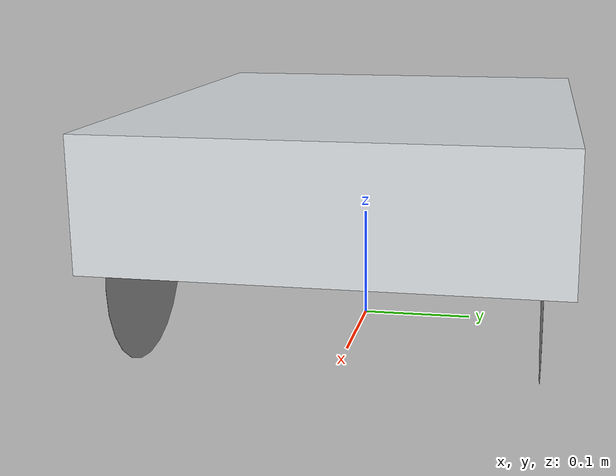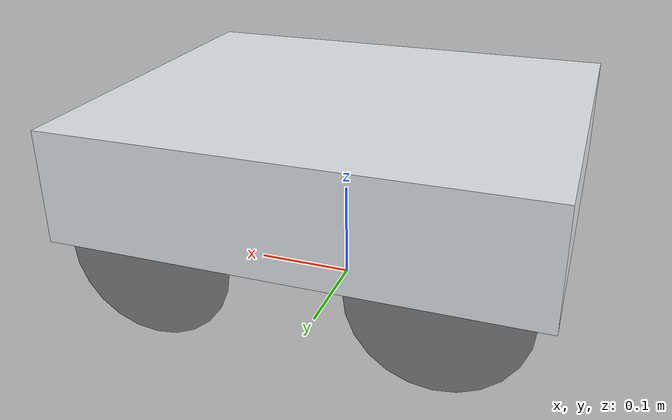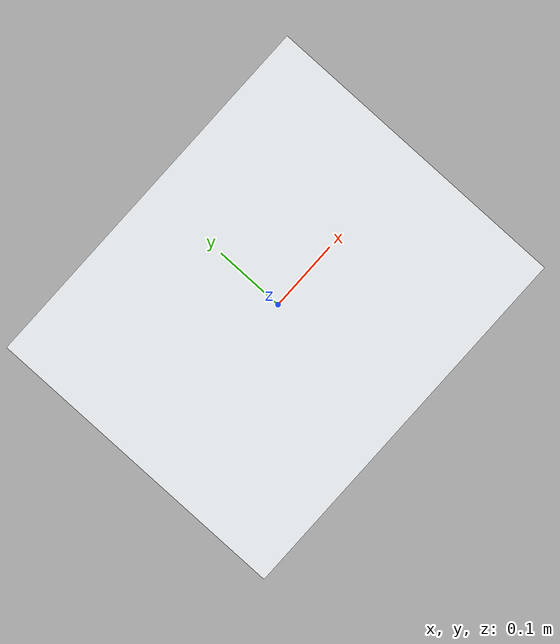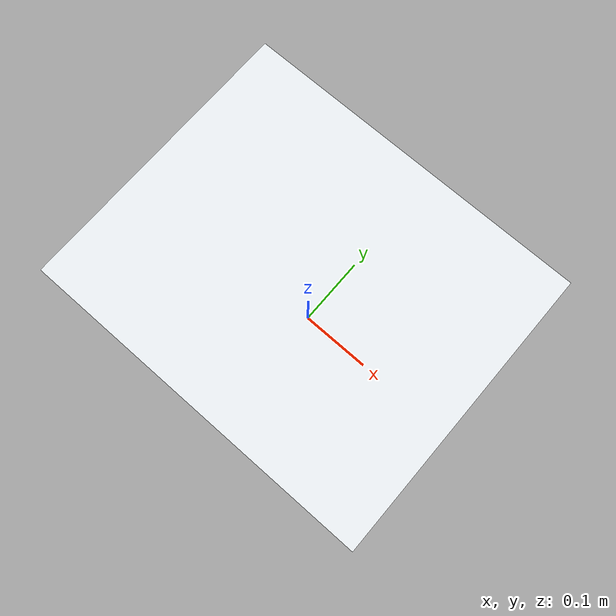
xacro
<?xml version="1.0"?>
<robot xmlns:xacro="http://www.ros.org/wiki/xacro" name="mobile_base_moveit">

    <!-- Include the simplified mobile base model -->
    <xacro:include filename="$(find rh_moveit)/config/mobile_base/hexmove_simplfied_model.xacro"/>

    <!-- Include ros2_control configuration -->
    <xacro:include filename="$(find rh_moveit)/config/mobile_base/mobile_base.ros2_control.xacro"/>

    <!-- Instantiate the ros2_control configuration -->
    <xacro:mobile_base_ros2_control name="MobileBaseHardware"/>

</robot>

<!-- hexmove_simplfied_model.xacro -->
<robot name="sim" xmlns:xacro="http://www.ros.org/wiki/xacro">

    <!-- base link -->
    <link name="mobile_base">
        <inertial>
            <origin xyz="-3.9274E-14 -2.7443E-13 0.16087" rpy="0 0 0" />
            <mass value="10.31238" />
            <inertia ixx="0.0035443"  ixy="-3.9883E-18" ixz="-7.3407E-22"
                     iyy="1.5651E-05" iyz="2.4064E-18"  izz="0.0035443" />
        </inertial>
        <visual>
            <origin xyz="-0.005 0.0 0.15" rpy="0 0 0" />
            <geometry>
                <box size="0.46 0.38 0.11" />
            </geometry>
            <material name="">
                <color rgba="0.89804 0.91765 0.92941 1" />
            </material>
        </visual>
        <collision>
            <origin xyz="-0.005 0.0 0.15" rpy="0 0 0" />
            <geometry>
                <box size="0.59 0.617 0.20" />
            </geometry>
        </collision>
    </link>
    <gazebo reference="mobile_base">
        <material>Gazebo/White</material>
        <gravity>true</gravity>
    </gazebo>

    <!-- left back wheel -->
    <link name="LeftBackWheel_Link">
    <inertial>
        <origin xyz="6.2681E-07 -0.0024922 4.309E-06" rpy="0 0 0" />
        <mass value="2.2978" />
        <inertia ixx="0.0056318" ixy="9.6362E-08" ixz="7.6946E-06"
                 iyy="0.0092712" iyz="2.4773E-07" izz="0.0056483" />
        </inertial>
        <visual>
            <origin xyz="0 0 0" rpy="1.57079637 0 0" />
            <geometry>
                <cylinder length="0.0001" radius="0.08285"/>
            </geometry>
            <material name="">
                <color rgba="0.5 0.5 0.5 1" />
            </material>
        </visual>
        <collision>
            <origin xyz="0 0 0" rpy="1.57079637 0 0" />
            <geometry>
                <cylinder length="0.0001" radius="0.08285"/>
            </geometry>
        </collision>
    </link>
    <gazebo reference="LeftBackWheel_Link">
        <material>Gazebo/DarkGrey</material>
        <mu1>0.01</mu1>
        <mu2>0.01</mu2>
        <gravity>true</gravity>
    </gazebo>
    <joint name="LeftBackWheel_joint" type="fixed">
        <origin xyz="-0.13636 0.1666 0.08285" rpy="0 0 0" />
        <parent link="mobile_base" />
        <child link="LeftBackWheel_Link" />
        <axis xyz="0 1 0" />
    </joint>

    <!-- left front wheel -->
    <link name="LeftFrontWheel_Link">
        <inertial>
            <origin xyz="6.2746E-07 -0.0024922 4.3083E-06" rpy="0 0 0" />
            <mass value="2.2978" />
            <inertia ixx="0.0056318" ixy="9.6416E-08" ixz="7.6946E-06"
                     iyy="0.0092712" iyz="2.4767E-07" izz="0.0056483" />
        </inertial>
        <visual>
            <origin xyz="0 0 0" rpy="1.57079637 0 0" />
            <geometry>
                <cylinder length="0.0001" radius="0.08285"/>
            </geometry>
            <material name="">
                <color rgba="0.5 0.5 0.5 1" />
            </material>
        </visual>
        <collision>
            <origin xyz="0 0 0" rpy="1.57079637 0 0" />
            <geometry>
                <cylinder length="0.0001" radius="0.08285"/>
            </geometry>
        </collision>
    </link>
    <gazebo reference="LeftFrontWheel_Link">
        <material>Gazebo/DarkGrey</material>
        <mu1>0.01</mu1>
        <mu2>0.01</mu2>
        <gravity>true</gravity>
    </gazebo>
    <joint name="LeftFrontWheel_joint" type="fixed">
        <origin xyz="0.13636 0.1666 0.08285" rpy="0 0 0" />
        <parent link="mobile_base" />
        <child link="LeftFrontWheel_Link" />
        <axis xyz="0 1 0" />
    </joint>

    <!-- right back wheel -->
    <link name="RightBackWheel_Link">
        <inertial>
            <origin xyz="9.9705E-07 0.0024922 4.1668E-06" rpy="0 0 0" />
            <mass value="2.2978" />
            <inertia ixx="0.0056315" ixy="-9.4155E-08" ixz="7.3776E-06"
                     iyy="0.0092712" iyz="-2.4857E-07" izz="0.0056485" />
        </inertial>
        <visual>
            <origin xyz="0 0 0" rpy="1.57079637 0 0" />
            <geometry>
                <cylinder length="0.0001" radius="0.08285"/>
            </geometry>
            <material name="">
                <color rgba="0.5 0.5 0.5 1" />
            </material>
        </visual>
        <collision>
            <origin xyz="0 0 0" rpy="1.57079637 0 0" />
            <geometry>
                <cylinder length="0.0001" radius="0.08285"/>
            </geometry>
        </collision>
    </link>
    <gazebo reference="RightBackWheel_Link">
        <material>Gazebo/DarkGrey</material>
        <mu1>0.01</mu1>
        <mu2>0.01</mu2>
        <gravity>true</gravity>
    </gazebo>
    <joint name="RightBackWheel_joint" type="fixed">
        <origin xyz="-0.13636 -0.1666 0.08285" rpy="0 0 0" />
        <parent link="mobile_base" />
        <child link="RightBackWheel_Link" />
        <axis xyz="0 1 0" />
    </joint>

    <!-- right front wheel -->
    <link name="RightFrontWheel_Link">
        <inertial>
            <origin xyz="0 0 0" rpy="0 0 0" />
            <mass value="2.2978" />
            <inertia ixx="0.0056318" ixy="9.6416E-08" ixz="7.6946E-06"
                     iyy="0.0092712" iyz="2.4767E-07" izz="0.0056483" />
        </inertial>
        <visual>
            <origin xyz="0 0 0" rpy="1.57079637 0 0" />
            <geometry>
                <cylinder length="0.0001" radius="0.08285"/>
            </geometry>
            <material name="">
                <color rgba="0.5 0.5 0.5 1" />
            </material>
        </visual>
        <collision>
            <origin xyz="0 0 0" rpy="1.57079637 0 0" />
            <geometry>
                <cylinder length="0.0001" radius="0.08285"/>
            </geometry>
        </collision>
    </link>
    <gazebo reference="RightFrontWheel_Link">
        <material>Gazebo/DarkGrey</material>
        <mu1>0.01</mu1>
        <mu2>0.01</mu2>
        <gravity>true</gravity>
    </gazebo>
    <joint name="RightFrontWheel_joint" type="fixed">
        <origin xyz="0.13636 -0.1666 0.08285" rpy="0 0 0" />
        <parent link="mobile_base" />
        <child link="RightFrontWheel_Link" />
        <axis xyz="0 1 0" />
    </joint>

    <!-- controller -->
    <gazebo>
        <plugin name="mecanum_controller" filename="libgazebo_ros_planar_move.so">
            <commandTopic>cmd_vel</commandTopic>
            <odometryTopic>odom</odometryTopic>
            <odometryFrame>odom</odometryFrame>
            <rightFrontJoint>RightFrontWheel_joint</rightFrontJoint>
            <rightRearJoint>RightBackWheel_joint</rightRearJoint>
            <leftFrontJoint>LeftFrontWheel_joint</leftFrontJoint>
            <leftRearJoint>LeftBackWheel_joint</leftRearJoint>
            <odometryRate>100</odometryRate>
            <robotBaseFrame>base_footprint</robotBaseFrame>
            <broadcastTF>30</broadcastTF>
            <useRealTimestamp>true</useRealTimestamp>
            <publishTF>true</publishTF>
        </plugin>
    </gazebo>
</robot>
